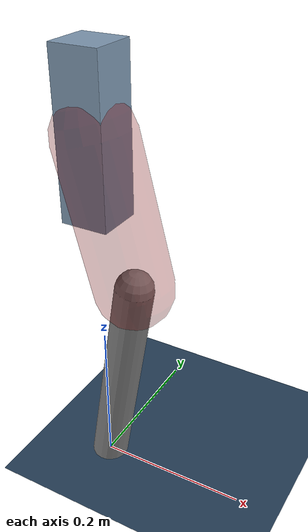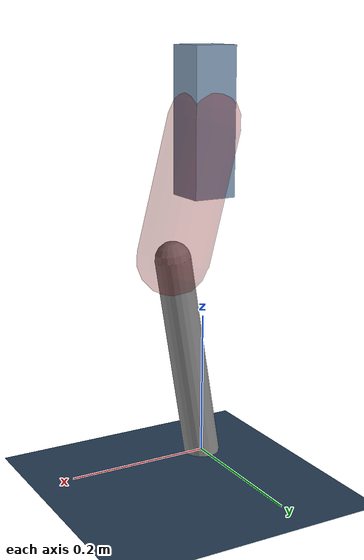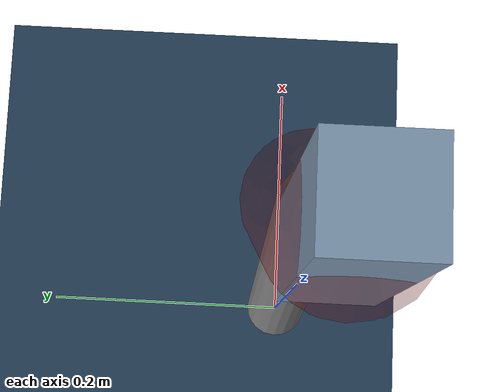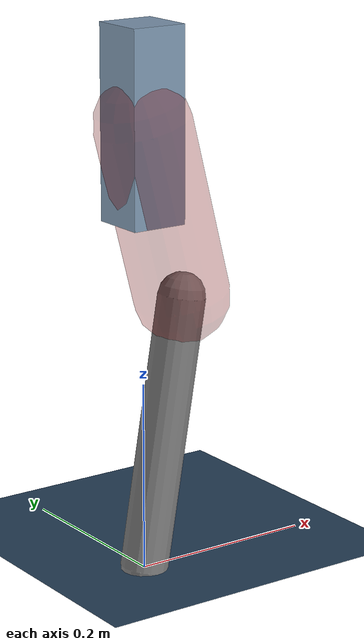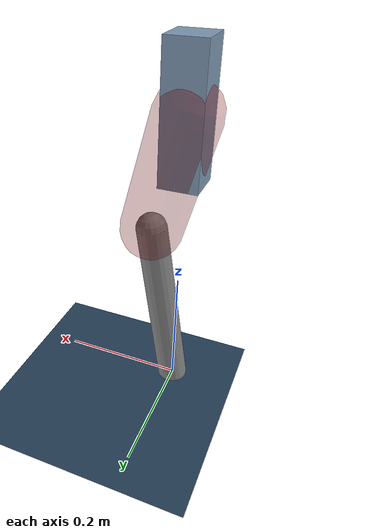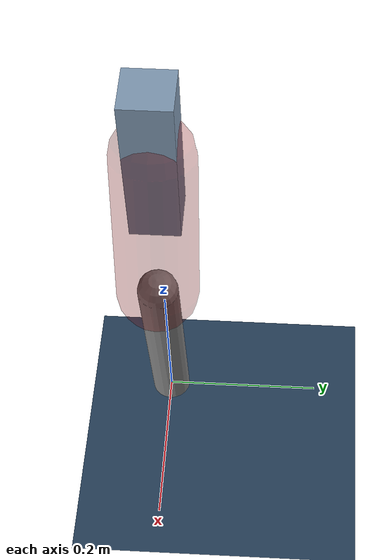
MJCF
<mujoco model="Hopper2D">
	<compiler inertiafromgeom="true" angle="radian" />
	<option timestep="0.001" integrator="implicit" cone="elliptic" solver="Newton" tolerance="1e-10" />

	<default>
		<geom contype="1" conaffinity="1" condim="3" friction="2 0.005 0.0001" solref="0.005 1" />
		<joint limited="true" damping="0.1" />
	</default>

	<asset>
		<texture name="skybox" type="skybox" builtin="gradient" rgb1=".4 .6 .8" rgb2="0 0 0" width="800" height="800" />
		<texture name="grid" type="2d" builtin="checker" rgb1=".1 .2 .3" rgb2=".2 .3 .4" width="300" height="300" mark="edge" markrgb=".2 .3 .4" />
		<material name="ground" texture="grid" texrepeat="1 1" texuniform="true" reflectance="0.1" />
		<material name="leg" rgba="0.5 0.6 0.7 1" />
	</asset>

	<worldbody>

		<geom name="floor" type="plane" size="5 5 0.25" material="ground" />

		<light directional="false" diffuse="0.8 0.8 0.8" specular="0.3 0.3 0.3" pos="0 0 2" dir="0 0 -1" />
		<light mode="targetbodycom" target="base" directional="false" diffuse="0.8 0.8 0.8" specular="0.3 0.3 0.3" pos="0 0 2" dir="0 0 -1" />

		<camera name="fixed" pos="0 -2 1" xyaxes="1 0 0 0 0 1" />
		<camera name="tracking" mode="trackcom" pos="0 -3 1" />

		<body name="root" pos="0 0 0.4697388671953856">
			<joint name="slide_x" type="slide" axis="1 0 0" range="-100 100" />
			<joint name="slide_z" type="slide" axis="0 0 1" range="0 10" />

			<body name="base" pos="0 0 0">
				<geom name="torso" type="box" size="0.03 0.03 0.1" mass="2.667" material="leg" />

				<body name="link1" pos="0 0 0" euler="0 1.3164912386591736 0">
					<joint type="hinge" axis="0 -1 0" pos="0 0 0" name="hinge1" limited="true" range="-3.14 3.14" stiffness="0" damping="0.1" />
					<geom name="thigh" type="capsule" fromto="0 0 0 0.1890819132627787 0 0" size="0.05" rgba="0.5 0 0 0.3" mass="0.7027047831569467" />

					<body name="link2" pos="0.1890819132627787 0 0" euler="0 0.418701037711412 0">
						<joint type="hinge" axis="0 -1 0" pos="0 0 0" name="hinge2" limited="true" range="-3.14 3.14" stiffness="0" damping="0.1" />
						<geom name="shank" type="capsule" fromto="0 0 0 0.29065695393260693 0 0" size="0.025" mass="0.4758255631460856" />

					</body>
				</body>
			</body>
		</body>
	</worldbody>

	<actuator>
		<motor name="torque1" joint="hinge1" ctrlrange="-30.56864473312406 30.56864473312406" ctrllimited="true" gear="1" />
		<motor name="torque2" joint="hinge2" ctrlrange="-107.02283626236384 107.02283626236384" ctrllimited="true" gear="1" />
	</actuator>
</mujoco>
